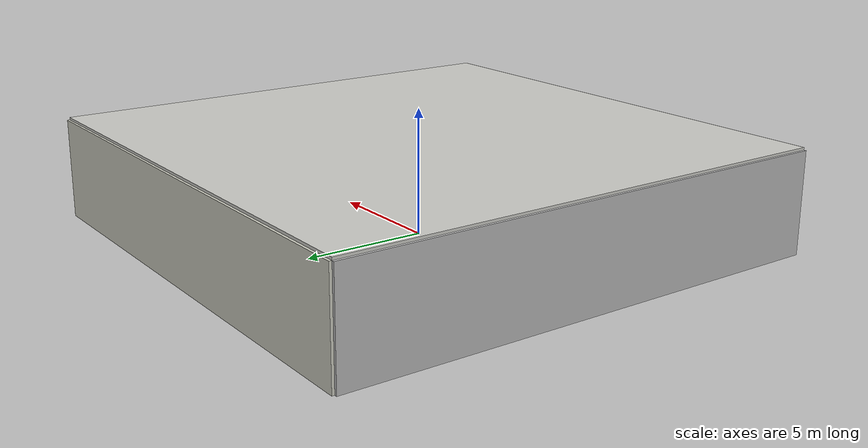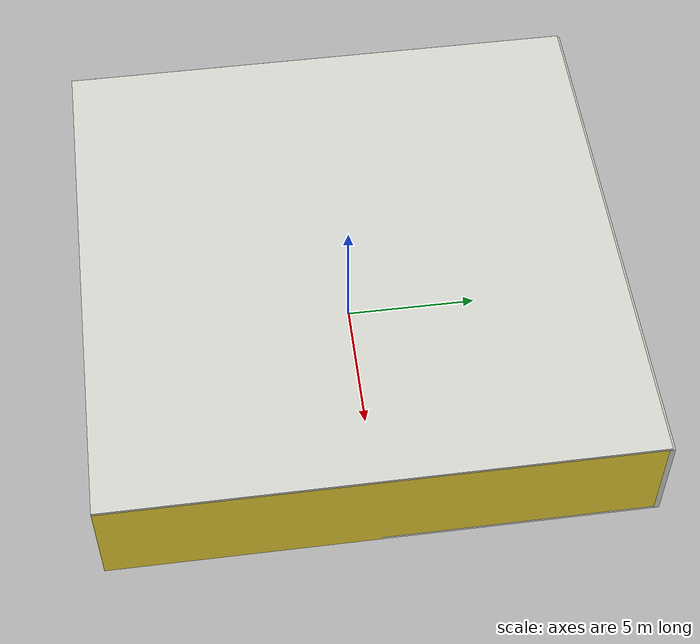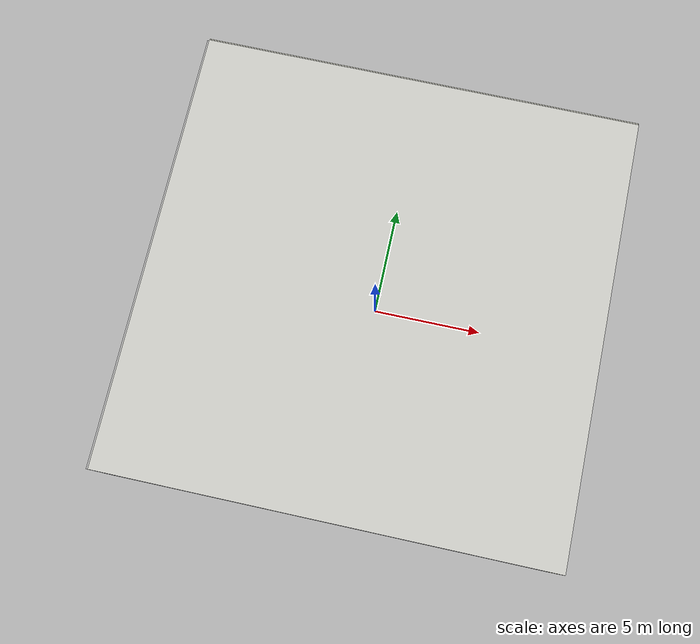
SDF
<sdf version="1.4">
 <world name="default">
  <physics type="ode">
   <max_step_size>0.001</max_step_size>
   <real_time_factor>1</real_time_factor>
   <real_time_update_rate>1000</real_time_update_rate>
   <gravity>0 0 -9.8</gravity>
  </physics>
  <scene><ambient>0.4 0.4 0.4 1</ambient><background>0.7 0.7 0.7 1</background><shadows>1</shadows></scene>
  <model name="Surrounding">
   <static>1</static>
   <link name="Ceiling">
    <collision name="Ceiling_Collision"><geometry><box><size>20 20 0.1</size></box></geometry></collision>
    <visual name="Ceiling_Visual">
     <geometry><box><size>20 20 0.1</size></box></geometry>
     <material>
      <script><uri>file://media/materials/scripts/gazebo.material</uri><name>Gazebo/CeilingTiled</name></script>
     </material>
    </visual>
    <pose>0 0 4.05 0 0 0</pose>
   </link>
   <link name="Wall_South">
    <collision name="Wall_South_Collision">
     <geometry><box><size>20 0 4</size></box></geometry>
     <pose>0 0 2 0 -0 0</pose>
    </collision>
    <visual name="Wall_South_Visual">
     <pose>0 0 2 0 -0 0</pose>
     <geometry><box><size>20 0 4</size></box></geometry>
     <material>
      <script><uri>file://media/materials/scripts/gazebo.material</uri><name>Gazebo/GreyTransparent</name></script>
     </material>
    </visual>
    <velocity_decay><linear>0</linear><angular>0</angular></velocity_decay>
    <pose>0 -10 0 0 -0 0</pose>
   </link>
   <link name="Wall_East">
    <collision name="Wall_21_Collision">
     <geometry><box><size>20 0 4</size></box></geometry>
     <pose>0 0 2 0 -0 0</pose>
    </collision>
    <visual name="Wall_21_Visual">
     <pose>0 0 2 0 -0 0</pose>
     <geometry><box><size>20 0 4</size></box></geometry>
     <material>
      <script><uri>file://media/materials/scripts/gazebo.material</uri><name>Gazebo/ZincYellow</name></script>
     </material>
    </visual>
    <velocity_decay><linear>0</linear><angular>0</angular></velocity_decay>
    <pose>10 0 0 0 -0 1.5708</pose>
   </link>
   <link name="Wall_North">
    <collision name="Wall_22_Collision">
     <geometry><box><size>20 0.2 4</size></box></geometry>
     <pose>0 0 2 0 -0 0</pose>
    </collision>
    <visual name="Wall_22_Visual">
     <pose>0 0 2 0 -0 0</pose>
     <geometry><box><size>20 0.2 4</size></box></geometry>
     <material>
      <script><uri>file://media/materials/scripts/gazebo.material</uri><name>Gazebo/PaintedWall</name></script>
     </material>
    </visual>
    <velocity_decay><linear>0</linear><angular>0</angular></velocity_decay>
    <pose>0 10 0 0 -0 0</pose>
   </link>
   <link name="Wall_West">
    <collision name="Wall_23_Collision">
     <geometry><box><size>20 0.2 4</size></box></geometry>
     <pose>0 0 2 0 -0 0</pose>
    </collision>
    <visual name="Wall_23_Visual">
     <pose>0 0 2 0 -0 0</pose>
     <geometry><box><size>20 0.2 4</size></box></geometry>
     <material>
      <script><uri>file://media/materials/scripts/gazebo.material</uri><name>Gazebo/Pioneer2Body</name></script>
     </material>
    </visual>
    <velocity_decay><linear>0</linear><angular>0</angular></velocity_decay>
    <pose>-10 0 0 0 0 -1.5708</pose>
   </link>
   <link name="Ground_link">
    <collision name="collision">
     <pose>0 0 .05 0 -0 0</pose>
     <geometry><box><size>20 20 0.1</size></box></geometry>
    </collision>
    <visual name="visual">
     <pose>0 0 .05 0 -0 0</pose>
     <geometry><box><size>20 20 0.1</size></box></geometry>
     <material>
      <script><uri>file://media/materials/scripts/gazebo.material</uri><name>Gazebo/WhiteGlow</name></script>
     </material>
    </visual>
   </link>
   <static>1</static>
  </model>
  <spherical_coordinates>
   <surface_model>EARTH_WGS84</surface_model>
   <latitude_deg>0</latitude_deg>
   <longitude_deg>0</longitude_deg>
   <elevation>0</elevation>
   <heading_deg>0</heading_deg>
  </spherical_coordinates>
  <light name="lightball_0" type="diffuse">
   <diffuse>0.8 0.8 0.8 1</diffuse>
   <specular>0.2 0.2 0.2 1</specular>
   <attenuation>
    <range>100</range>
    <constant>0.7</constant>
    <linear>0.01</linear>
    <quadratic>0.001</quadratic>
   </attenuation>
   <direction>-0.5 0.1 -0.9</direction>
   <pose>-8.51319365738 -2.75972755411 2.26249536743 0 0 0</pose>
  </light>
  <light name="lightball_1" type="diffuse">
   <diffuse>0.8 0.8 0.8 1</diffuse>
   <specular>0.2 0.2 0.2 1</specular>
   <attenuation>
    <range>100</range>
    <constant>0.7</constant>
    <linear>0.01</linear>
    <quadratic>0.001</quadratic>
   </attenuation>
   <direction>-0.5 0.1 -0.9</direction>
   <pose>-1.07172530602 -0.658340533624 2.63811402129 0 0 0</pose>
  </light>
  <light name="lightball_2" type="diffuse">
   <diffuse>0.8 0.8 0.8 1</diffuse>
   <specular>0.2 0.2 0.2 1</specular>
   <attenuation>
    <range>100</range>
    <constant>0.7</constant>
    <linear>0.01</linear>
    <quadratic>0.001</quadratic>
   </attenuation>
   <direction>-0.5 0.1 -0.9</direction>
   <pose>5.1134476223 8.26989538169 0.617497741549 0 0 0</pose>
  </light>
  <light name="lightball_3" type="diffuse">
   <diffuse>0.8 0.8 0.8 1</diffuse>
   <specular>0.2 0.2 0.2 1</specular>
   <attenuation>
    <range>100</range>
    <constant>0.7</constant>
    <linear>0.01</linear>
    <quadratic>0.001</quadratic>
   </attenuation>
   <direction>-0.5 0.1 -0.9</direction>
   <pose>-1.04454593284 -8.4100824307 2.85007684637 0 0 0</pose>
  </light>
  <light name="lightball_4" type="diffuse">
   <diffuse>0.8 0.8 0.8 1</diffuse>
   <specular>0.2 0.2 0.2 1</specular>
   <attenuation>
    <range>100</range>
    <constant>0.7</constant>
    <linear>0.01</linear>
    <quadratic>0.001</quadratic>
   </attenuation>
   <direction>-0.5 0.1 -0.9</direction>
   <pose>5.66510393868 5.52614422893 1.7987117638 0 0 0</pose>
  </light>
  <light name="lightball_5" type="diffuse">
   <diffuse>0.8 0.8 0.8 1</diffuse>
   <specular>0.2 0.2 0.2 1</specular>
   <attenuation>
    <range>100</range>
    <constant>0.7</constant>
    <linear>0.01</linear>
    <quadratic>0.001</quadratic>
   </attenuation>
   <direction>-0.5 0.1 -0.9</direction>
   <pose>8.86121489321 -8.59363044314 2.33935274103 0 0 0</pose>
  </light>
  <light name="lightball_6" type="diffuse">
   <diffuse>0.8 0.8 0.8 1</diffuse>
   <specular>0.2 0.2 0.2 1</specular>
   <attenuation>
    <range>100</range>
    <constant>0.7</constant>
    <linear>0.01</linear>
    <quadratic>0.001</quadratic>
   </attenuation>
   <direction>-0.5 0.1 -0.9</direction>
   <pose>7.1443154494 -9.60458888913 3.81236957606 0 0 0</pose>
  </light>
  <light name="lightball_7" type="diffuse">
   <diffuse>0.8 0.8 0.8 1</diffuse>
   <specular>0.2 0.2 0.2 1</specular>
   <attenuation>
    <range>100</range>
    <constant>0.7</constant>
    <linear>0.01</linear>
    <quadratic>0.001</quadratic>
   </attenuation>
   <direction>-0.5 0.1 -0.9</direction>
   <pose>6.8428012566 -2.81711343364 0.563776712577 0 0 0</pose>
  </light>
  <light name="lightball_8" type="diffuse">
   <diffuse>0.8 0.8 0.8 1</diffuse>
   <specular>0.2 0.2 0.2 1</specular>
   <attenuation>
    <range>100</range>
    <constant>0.7</constant>
    <linear>0.01</linear>
    <quadratic>0.001</quadratic>
   </attenuation>
   <direction>-0.5 0.1 -0.9</direction>
   <pose>-4.07949862331 2.3523953639 3.28946233749 0 0 0</pose>
  </light>
  <light name="lightball_9" type="diffuse">
   <diffuse>0.8 0.8 0.8 1</diffuse>
   <specular>0.2 0.2 0.2 1</specular>
   <attenuation>
    <range>100</range>
    <constant>0.7</constant>
    <linear>0.01</linear>
    <quadratic>0.001</quadratic>
   </attenuation>
   <direction>-0.5 0.1 -0.9</direction>
   <pose>5.07719896654 -6.19418346793 1.26532623624 0 0 0</pose>
  </light>
  <include><uri>model://cabinet</uri><pose>-8.20031978818 -1.4274118833 0 0 0 1.66128031171</pose></include>
  <include><uri>model://table</uri><pose>-6.53162421312 2.3227073313 0 0 0 0.214402238776</pose></include>
  <include><uri>model://cabinet</uri><pose>1.57607557515 -4.05458006626 0 0 0 0.47643306795</pose></include>
 </world>
</sdf>

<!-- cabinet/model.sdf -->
<sdf version="1.5">
  <model name="cabinet">
    <static>true</static>
    <link name="cabinet_bottom_plate">
      <inertial>
        <pose>0 0 -1 0 0 0</pose>
        <inertia>
          <ixx>2.050000</ixx>
          <ixy>0</ixy>
          <ixz>0</ixz>
          <iyy>2.050000</iyy>
          <iyz>0</iyz>
          <izz>2.050000</izz>
        </inertia>
        <mass>25.000000</mass>
      </inertial>
      <collision name="cabinet_bottom_plate_geom">
        <pose>0 0 0.010000 0 0 0</pose>
        <geometry>
          <box>
            <size>0.450000 0.450000 0.020000</size>
          </box>
        </geometry>
      </collision>
      <visual name="cabinet_bottom_plate_geom_visual">
        <pose>0 0 0.010000 0 0 0</pose>
        <geometry>
          <box>
            <size>0.450000 0.450000 0.020000</size>
          </box>
        </geometry>
        <material>
          <script>
            <uri>model://media/materials/scripts/gazebo.material</uri>
            <name>Gazebo/Wood</name>
          </script>
        </material>
      </visual>
      <collision name="cabinet_bottom_plate_geom_cabinet_back_plate">
        <pose>0.235000 0 0.510000 0 0 0</pose>
        <geometry>
          <box>
            <size>0.020000 0.450000 1.020000</size>
          </box>
        </geometry>
      </collision>
      <visual name="cabinet_bottom_plate_geom_cabinet_back_plate_visual">
        <pose>0.235000 0 0.510000 0 0 0</pose>
        <geometry>
          <box>
            <size>0.020000 0.450000 1.020000</size>
          </box>
        </geometry>
        <material>
          <script>
            <uri>model://media/materials/scripts/gazebo.material</uri>
            <name>Gazebo/Wood</name>
          </script>
        </material>
      </visual>
      <collision name="cabinet_bottom_plate_geom_cabinet_left_plate">
        <pose>0 0.235000 0.510000 0 0 0</pose>
        <geometry>
          <box>
            <size>0.450000 0.020000 1.020000</size>
          </box>
        </geometry>
      </collision>
      <visual name="cabinet_bottom_plate_geom_cabinet_left_plate_visual">
        <pose>0 0.235000 0.510000 0 0 0</pose>
        <geometry>
          <box>
            <size>0.450000 0.020000 1.020000</size>
          </box>
        </geometry>
        <material>
          <script>
            <uri>model://media/materials/scripts/gazebo.material</uri>
            <name>Gazebo/Wood</name>
          </script>
        </material>
      </visual>
      <collision name="cabinet_bottom_plate_geom_cabinet_middle_plate">
        <pose>0 0 0.510000 0 0 0</pose>
        <geometry>
          <box>
            <size>0.450000 0.450000 0.020000</size>
          </box>
        </geometry>
      </collision>
      <visual name="cabinet_bottom_plate_geom_cabinet_middle_plate_visual">
        <pose>0 0 0.510000 0 0 0</pose>
        <geometry>
          <box>
            <size>0.450000 0.450000 0.020000</size>
          </box>
        </geometry>
        <material>
          <script>
            <uri>model://media/materials/scripts/gazebo.material</uri>
            <name>Gazebo/Wood</name>
          </script>
        </material>
      </visual>
      <collision name="cabinet_bottom_plate_geom_cabinet_right_plate">
        <pose>0 -0.235000 0.510000 0 0 0</pose>
        <geometry>
          <box>
            <size>0.450000 0.020000 1.020000</size>
          </box>
        </geometry>
      </collision>
      <visual name="cabinet_bottom_plate_geom_cabinet_right_plate_visual">
        <pose>0 -0.235000 0.510000 0 0 0</pose>
        <geometry>
          <box>
            <size>0.450000 0.020000 1.020000</size>
          </box>
        </geometry>
        <material>
          <script>
            <uri>model://media/materials/scripts/gazebo.material</uri>
            <name>Gazebo/Wood</name>
          </script>
        </material>
      </visual>
      <collision name="cabinet_bottom_plate_geom_cabinet_top_plate">
        <pose>0 0 1.010000 0 0 0</pose>
        <geometry>
          <box>
            <size>0.450000 0.450000 0.020000</size>
          </box>
        </geometry>
      </collision>
      <visual name="cabinet_bottom_plate_geom_cabinet_top_plate_visual">
        <pose>0 0 1.010000 0 0 0</pose>
        <geometry>
          <box>
            <size>0.450000 0.450000 0.020000</size>
          </box>
        </geometry>
        <material>
          <script>
            <uri>model://media/materials/scripts/gazebo.material</uri>
            <name>Gazebo/Wood</name>
          </script>
        </material>
      </visual>
    </link>
  </model>
</sdf>

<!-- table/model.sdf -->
<sdf version="1.5">
  <model name="table">
    <static>true</static>
    <link name="link">
      <collision name="surface">
        <pose>0 0 1.0 0 0 0</pose>
        <geometry>
          <box>
            <size>1.5 0.8 0.03</size>
          </box>
        </geometry>
        <surface>
          <friction>
            <ode>
              <mu>0.6</mu>
              <mu2>0.6</mu2>
            </ode>
          </friction>
        </surface>
      </collision>
      <visual name="visual1">
        <pose>0 0 1.0 0 0 0</pose>
        <geometry>
          <box>
            <size>1.5 0.8 0.03</size>
          </box>
        </geometry>
        <material>
          <script>
            <uri>model://media/materials/scripts/gazebo.material</uri>
            <name>Gazebo/Wood</name>
          </script>
        </material>
      </visual>
      <collision name="front_left_leg">
        <pose>0.68 0.38 0.5 0 0 0</pose>
        <geometry>
          <cylinder>
            <radius>0.02</radius>
            <length>1.0</length>
          </cylinder>
        </geometry>
      </collision>
      <visual name="front_left_leg">
        <pose>0.68 0.38 0.5 0 0 0</pose>
        <geometry>
          <cylinder>
            <radius>0.02</radius>
            <length>1.0</length>
          </cylinder>
        </geometry>
        <material>
          <script>
            <uri>model://media/materials/scripts/gazebo.material</uri>
            <name>Gazebo/Grey</name>
          </script>
        </material>
      </visual>
      <collision name="front_right_leg">
        <pose>0.68 -0.38 0.5 0 0 0</pose>
        <geometry>
          <cylinder>
            <radius>0.02</radius>
            <length>1.0</length>
          </cylinder>
        </geometry>
      </collision>
      <visual name="front_right_leg">
        <pose>0.68 -0.38 0.5 0 0 0</pose>
        <geometry>
          <cylinder>
            <radius>0.02</radius>
            <length>1.0</length>
          </cylinder>
        </geometry>
        <material>
          <script>
            <uri>model://media/materials/scripts/gazebo.material</uri>
            <name>Gazebo/Grey</name>
          </script>
        </material>
      </visual>
      <collision name="back_right_leg">
        <pose>-0.68 -0.38 0.5 0 0 0</pose>
        <geometry>
          <cylinder>
            <radius>0.02</radius>
            <length>1.0</length>
          </cylinder>
        </geometry>
      </collision>
      <visual name="back_right_leg">
        <pose>-0.68 -0.38 0.5 0 0 0</pose>
        <geometry>
          <cylinder>
            <radius>0.02</radius>
            <length>1.0</length>
          </cylinder>
        </geometry>
        <material>
          <script>
            <uri>model://media/materials/scripts/gazebo.material</uri>
            <name>Gazebo/Grey</name>
          </script>
        </material>
      </visual>
      <collision name="back_left_leg">
        <pose>-0.68 0.38 0.5 0 0 0</pose>
        <geometry>
          <cylinder>
            <radius>0.02</radius>
            <length>1.0</length>
          </cylinder>
        </geometry>
      </collision>
      <visual name="back_left_leg">
        <pose>-0.68 0.38 0.5 0 0 0</pose>
        <geometry>
          <cylinder>
            <radius>0.02</radius>
            <length>1.0</length>
          </cylinder>
        </geometry>
        <material>
          <script>
            <uri>model://media/materials/scripts/gazebo.material</uri>
            <name>Gazebo/Grey</name>
          </script>
        </material>
      </visual>
    </link>
  </model>
</sdf>
